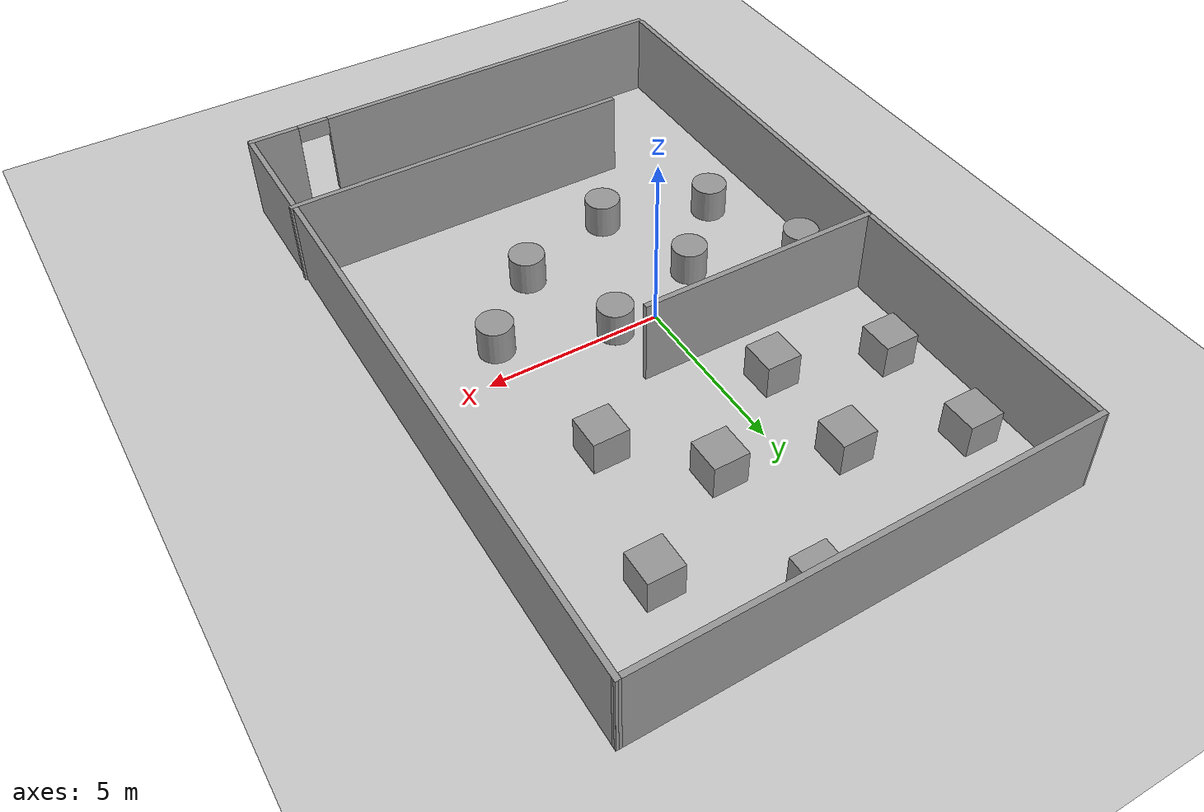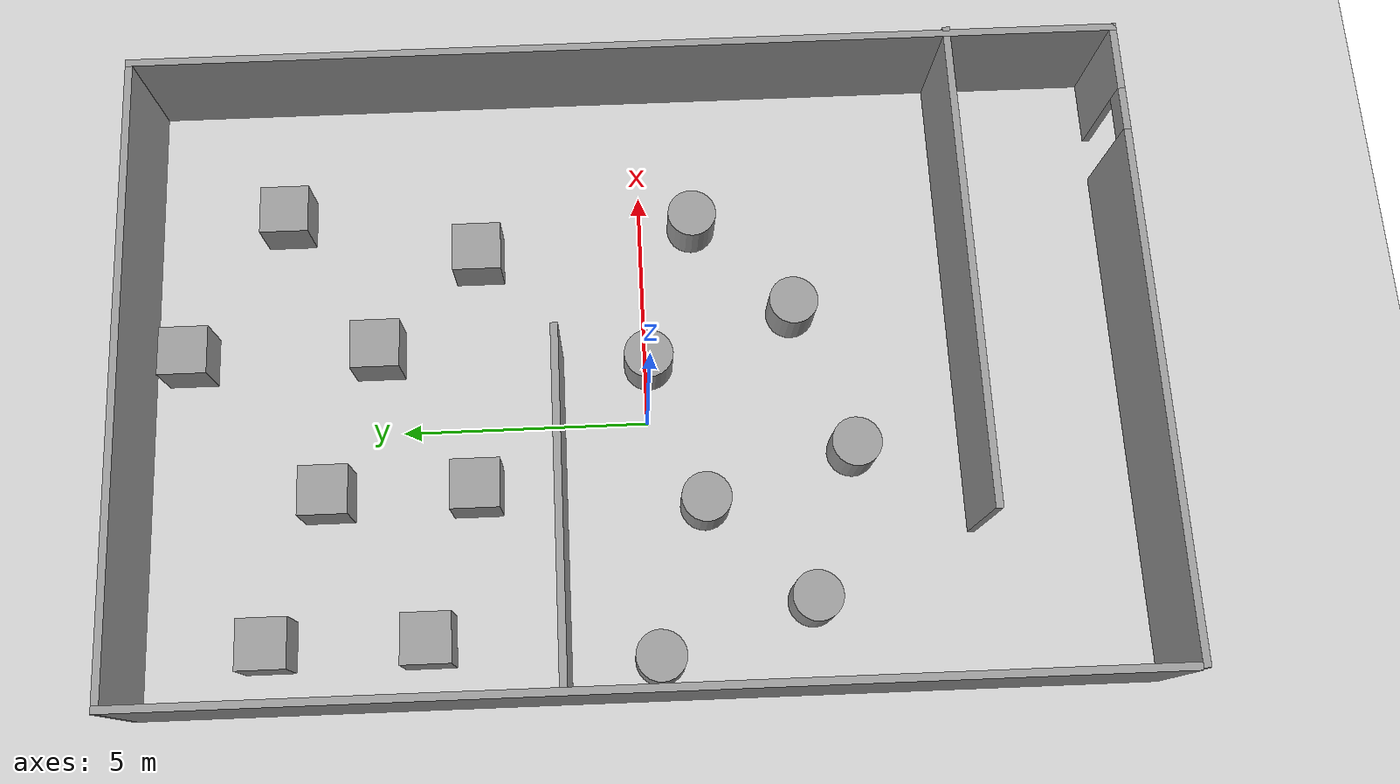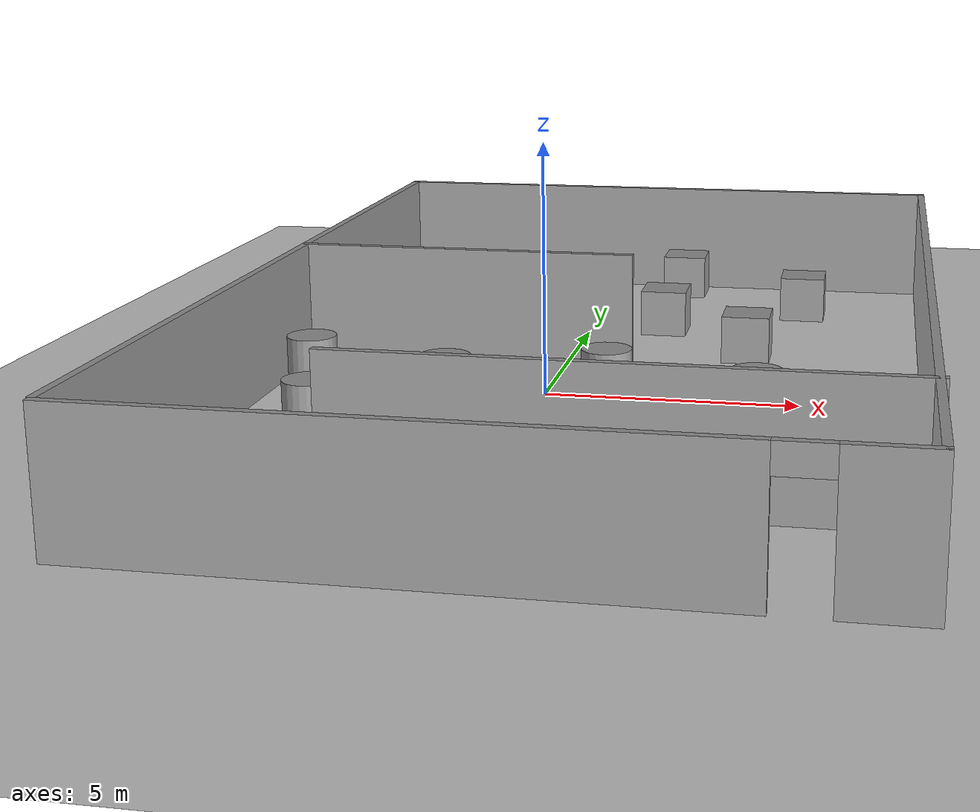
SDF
<sdf version="1.7">
 <world name="default">
  <light name="sun" type="directional">
   <pose>0 0 10 0 -0 0</pose>
   <diffuse>0.8 0.8 0.8 1</diffuse>
   <specular>0.2 0.2 0.2 1</specular>
   <attenuation>
    <range>1000</range>
    <constant>0.9</constant>
    <linear>0.01</linear>
    <quadratic>0.001</quadratic>
   </attenuation>
   <direction>-0.5 0.1 -0.9</direction>
   <spot><inner_angle>0</inner_angle><outer_angle>0</outer_angle><falloff>0</falloff></spot>
  </light>
  <model name="ground_plane">
   <static>1</static>
   <link name="link">
    <collision name="collision">
     <geometry><plane><normal>0 0 1</normal><size>100 100</size></plane></geometry>
     <surface><friction><ode><mu>100</mu><mu2>50</mu2></ode></friction></surface>
    </collision>
    <visual name="visual">
     <cast_shadows>0</cast_shadows>
     <geometry><plane><normal>0 0 1</normal><size>100 100</size></plane></geometry>
     <material>
      <script><uri>file://media/materials/scripts/gazebo.material</uri><name>Gazebo/Grey</name></script>
     </material>
    </visual>
   </link>
  </model>
  <gravity>0 0 -9.8</gravity>
  <magnetic_field>6e-06 2.3e-05 -4.2e-05</magnetic_field>
  <atmosphere type="adiabatic"/>
  <physics type="ode">
   <max_step_size>0.001</max_step_size>
   <real_time_factor>1</real_time_factor>
   <real_time_update_rate>1000</real_time_update_rate>
  </physics>
  <scene><ambient>0.4 0.4 0.4 1</ambient><background>0.7 0.7 0.7 1</background><shadows>1</shadows></scene>
  <spherical_coordinates>
   <surface_model>EARTH_WGS84</surface_model>
   <latitude_deg>0</latitude_deg>
   <longitude_deg>0</longitude_deg>
   <elevation>0</elevation>
   <heading_deg>0</heading_deg>
  </spherical_coordinates>
  <model name="hd_world">
   <model name="hd_world">
    <pose>0.372703 2.13157 0 0 -0 0</pose>
    <link name="Wall_0">
     <pose>-0.009132 -10.0503 0 0 -0 3.14159</pose>
     <visual name="Wall_0_Visual_0">
      <pose>-5.76706 0 1.25 0 -0 0</pose>
      <geometry><box><size>1.46587 0.15 2.5</size></box></geometry>
      <material>
       <script><uri>file://media/materials/scripts/gazebo.material</uri><name>Gazebo/Grey</name></script>
       <ambient>1 1 1 1</ambient>
      </material>
      <meta><layer>0</layer></meta>
     </visual>
     <collision name="Wall_0_Collision_0">
      <geometry><box><size>1.46587 0.15 2.5</size></box></geometry>
      <pose>-5.76706 0 1.25 0 -0 0</pose>
     </collision>
     <visual name="Wall_0_Visual_1">
      <pose>1.18294 0 1.25 0 -0 0</pose>
      <geometry><box><size>10.6341 0.15 2.5</size></box></geometry>
      <material>
       <script><uri>file://media/materials/scripts/gazebo.material</uri><name>Gazebo/Grey</name></script>
       <ambient>1 1 1 1</ambient>
      </material>
      <meta><layer>0</layer></meta>
     </visual>
     <collision name="Wall_0_Collision_1">
      <geometry><box><size>10.6341 0.15 2.5</size></box></geometry>
      <pose>1.18294 0 1.25 0 -0 0</pose>
     </collision>
     <visual name="Wall_0_Visual_2">
      <pose>-4.58413 0 2.25 0 -0 0</pose>
      <geometry><box><size>0.9 0.15 0.5</size></box></geometry>
      <material>
       <script><uri>file://media/materials/scripts/gazebo.material</uri><name>Gazebo/Grey</name></script>
       <ambient>1 1 1 1</ambient>
      </material>
      <meta><layer>0</layer></meta>
     </visual>
     <collision name="Wall_0_Collision_2">
      <geometry><box><size>0.9 0.15 0.5</size></box></geometry>
      <pose>-4.58413 0 2.25 0 -0 0</pose>
     </collision>
    </link>
    <link name="Wall_10">
     <collision name="Wall_10_Collision">
      <geometry><box><size>7 0.15 2.5</size></box></geometry>
      <pose>0 0 1.25 0 -0 0</pose>
     </collision>
     <visual name="Wall_10_Visual">
      <pose>0 0 1.25 0 -0 0</pose>
      <geometry><box><size>7 0.15 2.5</size></box></geometry>
      <material>
       <script><uri>file://media/materials/scripts/gazebo.material</uri><name>Gazebo/Grey</name></script>
       <ambient>1 1 1 1</ambient>
      </material>
      <meta><layer>0</layer></meta>
     </visual>
     <pose>-2.98607 1.55558 0 0 -0 0</pose>
    </link>
    <link name="Wall_2">
     <collision name="Wall_2_Collision">
      <geometry><box><size>20.25 0.15 2.5</size></box></geometry>
      <pose>0 0 1.25 0 -0 0</pose>
     </collision>
     <visual name="Wall_2_Visual">
      <pose>0 0 1.25 0 -0 0</pose>
      <geometry><box><size>20.25 0.15 2.5</size></box></geometry>
      <material>
       <script><uri>file://media/materials/scripts/gazebo.material</uri><name>Gazebo/Grey</name></script>
       <ambient>1 1 1 1</ambient>
      </material>
      <meta><layer>0</layer></meta>
     </visual>
     <pose>6.41587 -0.000303 0 0 -0 1.5708</pose>
    </link>
    <link name="Wall_4">
     <collision name="Wall_4_Collision">
      <geometry><box><size>13 0.15 2.5</size></box></geometry>
      <pose>0 0 1.25 0 -0 0</pose>
     </collision>
     <visual name="Wall_4_Visual">
      <pose>0 0 1.25 0 -0 0</pose>
      <geometry><box><size>13 0.15 2.5</size></box></geometry>
      <material>
       <script><uri>file://media/materials/scripts/gazebo.material</uri><name>Gazebo/Grey</name></script>
       <ambient>1 1 1 1</ambient>
      </material>
      <meta><layer>0</layer></meta>
     </visual>
     <pose>-0.00892 9.99756 0 0 -0 -3.13348</pose>
    </link>
    <link name="Wall_6">
     <collision name="Wall_6_Collision">
      <geometry><box><size>20 0.15 2.5</size></box></geometry>
      <pose>0 0 1.25 0 -0 0</pose>
     </collision>
     <visual name="Wall_6_Visual">
      <pose>0 0 1.25 0 -0 0</pose>
      <geometry><box><size>20 0.15 2.5</size></box></geometry>
      <material>
       <script><uri>file://media/materials/scripts/gazebo.material</uri><name>Gazebo/Grey</name></script>
       <ambient>1 1 1 1</ambient>
      </material>
      <meta><layer>0</layer></meta>
     </visual>
     <pose>-6.45439 0.020257 0 0 -0 -1.57288</pose>
    </link>
    <link name="Wall_8">
     <collision name="Wall_8_Collision">
      <geometry><box><size>10 0.15 2.5</size></box></geometry>
      <pose>0 0 1.25 0 -0 0</pose>
     </collision>
     <visual name="Wall_8_Visual">
      <pose>0 0 1.25 0 -0 0</pose>
      <geometry><box><size>10 0.15 2.5</size></box></geometry>
      <material>
       <script><uri>file://media/materials/scripts/gazebo.material</uri><name>Gazebo/Grey</name></script>
       <ambient>1 1 1 1</ambient>
      </material>
      <meta><layer>0</layer></meta>
     </visual>
     <pose>1.55022 -6.63711 0 0 -0 3.14159</pose>
    </link>
    <static>1</static>
   </model>
   <model name="hd_world_0">
    <link name="link_0">
     <inertial>
      <mass>1</mass>
      <inertia><ixx>0.145833</ixx><ixy>0</ixy><ixz>0</ixz><iyy>0.145833</iyy><iyz>0</iyz><izz>0.125</izz></inertia>
     </inertial>
     <pose>-4.99904 3.99541 0.5 0 -0 0</pose>
     <visual name="visual">
      <geometry><cylinder><radius>0.5</radius><length>1</length></cylinder></geometry>
      <material>
       <lighting>1</lighting>
       <script><uri>file://media/materials/scripts/gazebo.material</uri><name>Gazebo/Grey</name></script>
       <shader type="pixel"/>
      </material>
     </visual>
     <collision name="collision">
      <geometry><cylinder><radius>0.5</radius><length>1</length></cylinder></geometry>
      <surface>
       <friction>
        <ode><mu>1</mu><mu2>1</mu2><fdir1>0 0 0</fdir1><slip1>0</slip1><slip2>0</slip2></ode>
        <torsional>
         <coefficient>1</coefficient>
         <patch_radius>0</patch_radius>
         <surface_radius>0</surface_radius>
         <use_patch_radius>1</use_patch_radius>
         <ode><slip>0</slip></ode>
        </torsional>
       </friction>
       <bounce><restitution_coefficient>0</restitution_coefficient><threshold>1e+06</threshold></bounce>
       <contact>
        <collide_without_contact>0</collide_without_contact>
        <collide_without_contact_bitmask>1</collide_without_contact_bitmask>
        <collide_bitmask>1</collide_bitmask>
        <ode>
         <soft_cfm>0</soft_cfm>
         <soft_erp>0.2</soft_erp>
         <kp>1e+13</kp>
         <kd>1</kd>
         <max_vel>0.01</max_vel>
         <min_depth>0</min_depth>
        </ode>
        <bullet>
         <split_impulse>1</split_impulse>
         <split_impulse_penetration_threshold>-0.01</split_impulse_penetration_threshold>
         <soft_cfm>0</soft_cfm>
         <soft_erp>0.2</soft_erp>
         <kp>1e+13</kp>
         <kd>1</kd>
        </bullet>
       </contact>
      </surface>
     </collision>
    </link>
    <link name="link_1">
     <inertial>
      <mass>1</mass>
      <inertia><ixx>0.145833</ixx><ixy>0</ixy><ixz>0</ixz><iyy>0.145833</iyy><iyz>0</iyz><izz>0.125</izz></inertia>
     </inertial>
     <pose>-1.95821 2.96596 0.5 0 -0 0</pose>
     <visual name="visual">
      <geometry><cylinder><radius>0.5</radius><length>1</length></cylinder></geometry>
      <material>
       <lighting>1</lighting>
       <script><uri>file://media/materials/scripts/gazebo.material</uri><name>Gazebo/Grey</name></script>
       <shader type="pixel"/>
      </material>
     </visual>
     <collision name="collision">
      <geometry><cylinder><radius>0.5</radius><length>1</length></cylinder></geometry>
      <surface>
       <friction>
        <ode><mu>1</mu><mu2>1</mu2><fdir1>0 0 0</fdir1><slip1>0</slip1><slip2>0</slip2></ode>
        <torsional>
         <coefficient>1</coefficient>
         <patch_radius>0</patch_radius>
         <surface_radius>0</surface_radius>
         <use_patch_radius>1</use_patch_radius>
         <ode><slip>0</slip></ode>
        </torsional>
       </friction>
       <bounce><restitution_coefficient>0</restitution_coefficient><threshold>1e+06</threshold></bounce>
       <contact>
        <collide_without_contact>0</collide_without_contact>
        <collide_without_contact_bitmask>1</collide_without_contact_bitmask>
        <collide_bitmask>1</collide_bitmask>
        <ode>
         <soft_cfm>0</soft_cfm>
         <soft_erp>0.2</soft_erp>
         <kp>1e+13</kp>
         <kd>1</kd>
         <max_vel>0.01</max_vel>
         <min_depth>0</min_depth>
        </ode>
        <bullet>
         <split_impulse>1</split_impulse>
         <split_impulse_penetration_threshold>-0.01</split_impulse_penetration_threshold>
         <soft_cfm>0</soft_cfm>
         <soft_erp>0.2</soft_erp>
         <kp>1e+13</kp>
         <kd>1</kd>
        </bullet>
       </contact>
      </surface>
     </collision>
    </link>
    <link name="link_10">
     <inertial>
      <mass>1</mass>
      <inertia>
       <ixx>0.166667</ixx>
       <ixy>0</ixy>
       <ixz>0</ixz>
       <iyy>0.166667</iyy>
       <iyz>0</iyz>
       <izz>0.166667</izz>
      </inertia>
     </inertial>
     <pose>3.48617 7.44236 0.5 0 -0 0</pose>
     <visual name="visual">
      <geometry><box><size>1 1 1</size></box></geometry>
      <material>
       <lighting>1</lighting>
       <script><uri>file://media/materials/scripts/gazebo.material</uri><name>Gazebo/Grey</name></script>
       <shader type="pixel"/>
      </material>
     </visual>
     <collision name="collision">
      <geometry><box><size>1 1 1</size></box></geometry>
      <surface>
       <friction>
        <ode><mu>1</mu><mu2>1</mu2><fdir1>0 0 0</fdir1><slip1>0</slip1><slip2>0</slip2></ode>
        <torsional>
         <coefficient>1</coefficient>
         <patch_radius>0</patch_radius>
         <surface_radius>0</surface_radius>
         <use_patch_radius>1</use_patch_radius>
         <ode><slip>0</slip></ode>
        </torsional>
       </friction>
       <bounce><restitution_coefficient>0</restitution_coefficient><threshold>1e+06</threshold></bounce>
       <contact>
        <collide_without_contact>0</collide_without_contact>
        <collide_without_contact_bitmask>1</collide_without_contact_bitmask>
        <collide_bitmask>1</collide_bitmask>
        <ode>
         <soft_cfm>0</soft_cfm>
         <soft_erp>0.2</soft_erp>
         <kp>1e+13</kp>
         <kd>1</kd>
         <max_vel>0.01</max_vel>
         <min_depth>0</min_depth>
        </ode>
        <bullet>
         <split_impulse>1</split_impulse>
         <split_impulse_penetration_threshold>-0.01</split_impulse_penetration_threshold>
         <soft_cfm>0</soft_cfm>
         <soft_erp>0.2</soft_erp>
         <kp>1e+13</kp>
         <kd>1</kd>
        </bullet>
       </contact>
      </surface>
     </collision>
    </link>
    <link name="link_11">
     <inertial>
      <mass>1</mass>
      <inertia><ixx>0.145833</ixx><ixy>0</ixy><ixz>0</ixz><iyy>0.145833</iyy><iyz>0</iyz><izz>0.125</izz></inertia>
     </inertial>
     <pose>-0.96921 -0.078313 0.5 0 -0 0</pose>
     <visual name="visual">
      <geometry><cylinder><radius>0.5</radius><length>1</length></cylinder></geometry>
      <material>
       <lighting>1</lighting>
       <script><uri>file://media/materials/scripts/gazebo.material</uri><name>Gazebo/Grey</name></script>
       <shader type="pixel"/>
      </material>
     </visual>
     <collision name="collision">
      <geometry><cylinder><radius>0.5</radius><length>1</length></cylinder></geometry>
      <surface>
       <friction>
        <ode><mu>1</mu><mu2>1</mu2><fdir1>0 0 0</fdir1><slip1>0</slip1><slip2>0</slip2></ode>
        <torsional>
         <coefficient>1</coefficient>
         <patch_radius>0</patch_radius>
         <surface_radius>0</surface_radius>
         <use_patch_radius>1</use_patch_radius>
         <ode><slip>0</slip></ode>
        </torsional>
       </friction>
       <bounce><restitution_coefficient>0</restitution_coefficient><threshold>1e+06</threshold></bounce>
       <contact>
        <collide_without_contact>0</collide_without_contact>
        <collide_without_contact_bitmask>1</collide_without_contact_bitmask>
        <collide_bitmask>1</collide_bitmask>
        <ode>
         <soft_cfm>0</soft_cfm>
         <soft_erp>0.2</soft_erp>
         <kp>1e+13</kp>
         <kd>1</kd>
         <max_vel>0.01</max_vel>
         <min_depth>0</min_depth>
        </ode>
        <bullet>
         <split_impulse>1</split_impulse>
         <split_impulse_penetration_threshold>-0.01</split_impulse_penetration_threshold>
         <soft_cfm>0</soft_cfm>
         <soft_erp>0.2</soft_erp>
         <kp>1e+13</kp>
         <kd>1</kd>
        </bullet>
       </contact>
      </surface>
     </collision>
    </link>
    <link name="link_12">
     <inertial>
      <mass>1</mass>
      <inertia><ixx>0.145833</ixx><ixy>0</ixy><ixz>0</ixz><iyy>0.145833</iyy><iyz>0</iyz><izz>0.125</izz></inertia>
     </inertial>
     <pose>2.04367 0.971009 0.5 0 -0 0</pose>
     <visual name="visual">
      <geometry><cylinder><radius>0.5</radius><length>1</length></cylinder></geometry>
      <material>
       <lighting>1</lighting>
       <script><uri>file://media/materials/scripts/gazebo.material</uri><name>Gazebo/Grey</name></script>
       <shader type="pixel"/>
      </material>
     </visual>
     <collision name="collision">
      <geometry><cylinder><radius>0.5</radius><length>1</length></cylinder></geometry>
      <surface>
       <friction>
        <ode><mu>1</mu><mu2>1</mu2><fdir1>0 0 0</fdir1><slip1>0</slip1><slip2>0</slip2></ode>
        <torsional>
         <coefficient>1</coefficient>
         <patch_radius>0</patch_radius>
         <surface_radius>0</surface_radius>
         <use_patch_radius>1</use_patch_radius>
         <ode><slip>0</slip></ode>
        </torsional>
       </friction>
       <bounce><restitution_coefficient>0</restitution_coefficient><threshold>1e+06</threshold></bounce>
       <contact>
        <collide_without_contact>0</collide_without_contact>
        <collide_without_contact_bitmask>1</collide_without_contact_bitmask>
        <collide_bitmask>1</collide_bitmask>
        <ode>
         <soft_cfm>0</soft_cfm>
         <soft_erp>0.2</soft_erp>
         <kp>1e+13</kp>
         <kd>1</kd>
         <max_vel>0.01</max_vel>
         <min_depth>0</min_depth>
        </ode>
        <bullet>
         <split_impulse>1</split_impulse>
         <split_impulse_penetration_threshold>-0.01</split_impulse_penetration_threshold>
         <soft_cfm>0</soft_cfm>
         <soft_erp>0.2</soft_erp>
         <kp>1e+13</kp>
         <kd>1</kd>
        </bullet>
       </contact>
      </surface>
     </collision>
    </link>
    <link name="link_13">
     <inertial>
      <mass>1</mass>
      <inertia><ixx>0.145833</ixx><ixy>0</ixy><ixz>0</ixz><iyy>0.145833</iyy><iyz>0</iyz><izz>0.125</izz></inertia>
     </inertial>
     <pose>1.02492 3.98439 0.5 0 -0 0</pose>
     <visual name="visual">
      <geometry><cylinder><radius>0.5</radius><length>1</length></cylinder></geometry>
      <material>
       <lighting>1</lighting>
       <script><uri>file://media/materials/scripts/gazebo.material</uri><name>Gazebo/Grey</name></script>
       <shader type="pixel"/>
      </material>
     </visual>
     <collision name="collision">
      <geometry><cylinder><radius>0.5</radius><length>1</length></cylinder></geometry>
      <surface>
       <friction>
        <ode><mu>1</mu><mu2>1</mu2><fdir1>0 0 0</fdir1><slip1>0</slip1><slip2>0</slip2></ode>
        <torsional>
         <coefficient>1</coefficient>
         <patch_radius>0</patch_radius>
         <surface_radius>0</surface_radius>
         <use_patch_radius>1</use_patch_radius>
         <ode><slip>0</slip></ode>
        </torsional>
       </friction>
       <bounce><restitution_coefficient>0</restitution_coefficient><threshold>1e+06</threshold></bounce>
       <contact>
        <collide_without_contact>0</collide_without_contact>
        <collide_without_contact_bitmask>1</collide_without_contact_bitmask>
        <collide_bitmask>1</collide_bitmask>
        <ode>
         <soft_cfm>0</soft_cfm>
         <soft_erp>0.2</soft_erp>
         <kp>1e+13</kp>
         <kd>1</kd>
         <max_vel>0.01</max_vel>
         <min_depth>0</min_depth>
        </ode>
        <bullet>
         <split_impulse>1</split_impulse>
         <split_impulse_penetration_threshold>-0.01</split_impulse_penetration_threshold>
         <soft_cfm>0</soft_cfm>
         <soft_erp>0.2</soft_erp>
         <kp>1e+13</kp>
         <kd>1</kd>
        </bullet>
       </contact>
      </surface>
     </collision>
    </link>
    <link name="link_14">
     <inertial>
      <mass>1</mass>
      <inertia><ixx>0.145833</ixx><ixy>0</ixy><ixz>0</ixz><iyy>0.145833</iyy><iyz>0</iyz><izz>0.125</izz></inertia>
     </inertial>
     <pose>4.03532 2.95456 0.5 0 -0 0</pose>
     <visual name="visual">
      <geometry><cylinder><radius>0.5</radius><length>1</length></cylinder></geometry>
      <material>
       <lighting>1</lighting>
       <script><uri>file://media/materials/scripts/gazebo.material</uri><name>Gazebo/Grey</name></script>
       <shader type="pixel"/>
      </material>
     </visual>
     <collision name="collision">
      <geometry><cylinder><radius>0.5</radius><length>1</length></cylinder></geometry>
      <surface>
       <friction>
        <ode><mu>1</mu><mu2>1</mu2><fdir1>0 0 0</fdir1><slip1>0</slip1><slip2>0</slip2></ode>
        <torsional>
         <coefficient>1</coefficient>
         <patch_radius>0</patch_radius>
         <surface_radius>0</surface_radius>
         <use_patch_radius>1</use_patch_radius>
         <ode><slip>0</slip></ode>
        </torsional>
       </friction>
       <bounce><restitution_coefficient>0</restitution_coefficient><threshold>1e+06</threshold></bounce>
       <contact>
        <collide_without_contact>0</collide_without_contact>
        <collide_without_contact_bitmask>1</collide_without_contact_bitmask>
        <collide_bitmask>1</collide_bitmask>
        <ode>
         <soft_cfm>0</soft_cfm>
         <soft_erp>0.2</soft_erp>
         <kp>1e+13</kp>
         <kd>1</kd>
         <max_vel>0.01</max_vel>
         <min_depth>0</min_depth>
        </ode>
        <bullet>
         <split_impulse>1</split_impulse>
         <split_impulse_penetration_threshold>-0.01</split_impulse_penetration_threshold>
         <soft_cfm>0</soft_cfm>
         <soft_erp>0.2</soft_erp>
         <kp>1e+13</kp>
         <kd>1</kd>
        </bullet>
       </contact>
      </surface>
     </collision>
    </link>
    <link name="link_2">
     <inertial>
      <mass>1</mass>
      <inertia><ixx>0.145833</ixx><ixy>0</ixy><ixz>0</ixz><iyy>0.145833</iyy><iyz>0</iyz><izz>0.125</izz></inertia>
     </inertial>
     <pose>-3.97897 0.921046 0.5 0 -0 0</pose>
     <visual name="visual">
      <geometry><cylinder><radius>0.5</radius><length>1</length></cylinder></geometry>
      <material>
       <lighting>1</lighting>
       <script><uri>file://media/materials/scripts/gazebo.material</uri><name>Gazebo/Grey</name></script>
       <shader type="pixel"/>
      </material>
     </visual>
     <collision name="collision">
      <geometry><cylinder><radius>0.5</radius><length>1</length></cylinder></geometry>
      <surface>
       <friction>
        <ode><mu>1</mu><mu2>1</mu2><fdir1>0 0 0</fdir1><slip1>0</slip1><slip2>0</slip2></ode>
        <torsional>
         <coefficient>1</coefficient>
         <patch_radius>0</patch_radius>
         <surface_radius>0</surface_radius>
         <use_patch_radius>1</use_patch_radius>
         <ode><slip>0</slip></ode>
        </torsional>
       </friction>
       <bounce><restitution_coefficient>0</restitution_coefficient><threshold>1e+06</threshold></bounce>
       <contact>
        <collide_without_contact>0</collide_without_contact>
        <collide_without_contact_bitmask>1</collide_without_contact_bitmask>
        <collide_bitmask>1</collide_bitmask>
        <ode>
         <soft_cfm>0</soft_cfm>
         <soft_erp>0.2</soft_erp>
         <kp>1e+13</kp>
         <kd>1</kd>
         <max_vel>0.01</max_vel>
         <min_depth>0</min_depth>
        </ode>
        <bullet>
         <split_impulse>1</split_impulse>
         <split_impulse_penetration_threshold>-0.01</split_impulse_penetration_threshold>
         <soft_cfm>0</soft_cfm>
         <soft_erp>0.2</soft_erp>
         <kp>1e+13</kp>
         <kd>1</kd>
        </bullet>
       </contact>
      </surface>
     </collision>
    </link>
    <link name="link_3">
     <inertial>
      <mass>1</mass>
      <inertia>
       <ixx>0.166667</ixx>
       <ixy>0</ixy>
       <ixz>0</ixz>
       <iyy>0.166667</iyy>
       <iyz>0</iyz>
       <izz>0.166667</izz>
      </inertia>
     </inertial>
     <pose>-4.479 8.49804 0.5 0 -0 0</pose>
     <visual name="visual">
      <geometry><box><size>1 1 1</size></box></geometry>
      <material>
       <lighting>1</lighting>
       <script><uri>file://media/materials/scripts/gazebo.material</uri><name>Gazebo/Grey</name></script>
       <shader type="pixel"/>
      </material>
     </visual>
     <collision name="collision">
      <geometry><box><size>1 1 1</size></box></geometry>
      <surface>
       <friction>
        <ode><mu>1</mu><mu2>1</mu2><fdir1>0 0 0</fdir1><slip1>0</slip1><slip2>0</slip2></ode>
        <torsional>
         <coefficient>1</coefficient>
         <patch_radius>0</patch_radius>
         <surface_radius>0</surface_radius>
         <use_patch_radius>1</use_patch_radius>
         <ode><slip>0</slip></ode>
        </torsional>
       </friction>
       <bounce><restitution_coefficient>0</restitution_coefficient><threshold>1e+06</threshold></bounce>
       <contact>
        <collide_without_contact>0</collide_without_contact>
        <collide_without_contact_bitmask>1</collide_without_contact_bitmask>
        <collide_bitmask>1</collide_bitmask>
        <ode>
         <soft_cfm>0</soft_cfm>
         <soft_erp>0.2</soft_erp>
         <kp>1e+13</kp>
         <kd>1</kd>
         <max_vel>0.01</max_vel>
         <min_depth>0</min_depth>
        </ode>
        <bullet>
         <split_impulse>1</split_impulse>
         <split_impulse_penetration_threshold>-0.01</split_impulse_penetration_threshold>
         <soft_cfm>0</soft_cfm>
         <soft_erp>0.2</soft_erp>
         <kp>1e+13</kp>
         <kd>1</kd>
        </bullet>
       </contact>
      </surface>
     </collision>
    </link>
    <link name="link_4">
     <inertial>
      <mass>1</mass>
      <inertia>
       <ixx>0.166667</ixx>
       <ixy>0</ixy>
       <ixz>0</ixz>
       <iyy>0.166667</iyy>
       <iyz>0</iyz>
       <izz>0.166667</izz>
      </inertia>
     </inertial>
     <pose>-4.46043 11.6487 0.5 0 -0 0</pose>
     <visual name="visual">
      <geometry><box><size>1 1 1</size></box></geometry>
      <material>
       <lighting>1</lighting>
       <script><uri>file://media/materials/scripts/gazebo.material</uri><name>Gazebo/Grey</name></script>
       <shader type="pixel"/>
      </material>
     </visual>
     <collision name="collision">
      <geometry><box><size>1 1 1</size></box></geometry>
      <surface>
       <friction>
        <ode><mu>1</mu><mu2>1</mu2><fdir1>0 0 0</fdir1><slip1>0</slip1><slip2>0</slip2></ode>
        <torsional>
         <coefficient>1</coefficient>
         <patch_radius>0</patch_radius>
         <surface_radius>0</surface_radius>
         <use_patch_radius>1</use_patch_radius>
         <ode><slip>0</slip></ode>
        </torsional>
       </friction>
       <bounce><restitution_coefficient>0</restitution_coefficient><threshold>1e+06</threshold></bounce>
       <contact>
        <collide_without_contact>0</collide_without_contact>
        <collide_without_contact_bitmask>1</collide_without_contact_bitmask>
        <collide_bitmask>1</collide_bitmask>
        <ode>
         <soft_cfm>0</soft_cfm>
         <soft_erp>0.2</soft_erp>
         <kp>1e+13</kp>
         <kd>1</kd>
         <max_vel>0.01</max_vel>
         <min_depth>0</min_depth>
        </ode>
        <bullet>
         <split_impulse>1</split_impulse>
         <split_impulse_penetration_threshold>-0.01</split_impulse_penetration_threshold>
         <soft_cfm>0</soft_cfm>
         <soft_erp>0.2</soft_erp>
         <kp>1e+13</kp>
         <kd>1</kd>
        </bullet>
       </contact>
      </surface>
     </collision>
    </link>
    <link name="link_5">
     <inertial>
      <mass>1</mass>
      <inertia>
       <ixx>0.166667</ixx>
       <ixy>0</ixy>
       <ixz>0</ixz>
       <iyy>0.166667</iyy>
       <iyz>0</iyz>
       <izz>0.166667</izz>
      </inertia>
     </inertial>
     <pose>-1.50936 10.526 0.5 0 -0 0</pose>
     <visual name="visual">
      <geometry><box><size>1 1 1</size></box></geometry>
      <material>
       <lighting>1</lighting>
       <script><uri>file://media/materials/scripts/gazebo.material</uri><name>Gazebo/Grey</name></script>
       <shader type="pixel"/>
      </material>
     </visual>
     <collision name="collision">
      <geometry><box><size>1 1 1</size></box></geometry>
      <surface>
       <friction>
        <ode><mu>1</mu><mu2>1</mu2><fdir1>0 0 0</fdir1><slip1>0</slip1><slip2>0</slip2></ode>
        <torsional>
         <coefficient>1</coefficient>
         <patch_radius>0</patch_radius>
         <surface_radius>0</surface_radius>
         <use_patch_radius>1</use_patch_radius>
         <ode><slip>0</slip></ode>
        </torsional>
       </friction>
       <bounce><restitution_coefficient>0</restitution_coefficient><threshold>1e+06</threshold></bounce>
       <contact>
        <collide_without_contact>0</collide_without_contact>
        <collide_without_contact_bitmask>1</collide_without_contact_bitmask>
        <collide_bitmask>1</collide_bitmask>
        <ode>
         <soft_cfm>0</soft_cfm>
         <soft_erp>0.2</soft_erp>
         <kp>1e+13</kp>
         <kd>1</kd>
         <max_vel>0.01</max_vel>
         <min_depth>0</min_depth>
        </ode>
        <bullet>
         <split_impulse>1</split_impulse>
         <split_impulse_penetration_threshold>-0.01</split_impulse_penetration_threshold>
         <soft_cfm>0</soft_cfm>
         <soft_erp>0.2</soft_erp>
         <kp>1e+13</kp>
         <kd>1</kd>
        </bullet>
       </contact>
      </surface>
     </collision>
    </link>
    <link name="link_6">
     <inertial>
      <mass>1</mass>
      <inertia>
       <ixx>0.166667</ixx>
       <ixy>0</ixy>
       <ixz>0</ixz>
       <iyy>0.166667</iyy>
       <iyz>0</iyz>
       <izz>0.166667</izz>
      </inertia>
     </inertial>
     <pose>-1.49954 7.52863 0.5 0 -0 0</pose>
     <visual name="visual">
      <geometry><box><size>1 1 1</size></box></geometry>
      <material>
       <lighting>1</lighting>
       <script><uri>file://media/materials/scripts/gazebo.material</uri><name>Gazebo/Grey</name></script>
       <shader type="pixel"/>
      </material>
     </visual>
     <collision name="collision">
      <geometry><box><size>1 1 1</size></box></geometry>
      <surface>
       <friction>
        <ode><mu>1</mu><mu2>1</mu2><fdir1>0 0 0</fdir1><slip1>0</slip1><slip2>0</slip2></ode>
        <torsional>
         <coefficient>1</coefficient>
         <patch_radius>0</patch_radius>
         <surface_radius>0</surface_radius>
         <use_patch_radius>1</use_patch_radius>
         <ode><slip>0</slip></ode>
        </torsional>
       </friction>
       <bounce><restitution_coefficient>0</restitution_coefficient><threshold>1e+06</threshold></bounce>
       <contact>
        <collide_without_contact>0</collide_without_contact>
        <collide_without_contact_bitmask>1</collide_without_contact_bitmask>
        <collide_bitmask>1</collide_bitmask>
        <ode>
         <soft_cfm>0</soft_cfm>
         <soft_erp>0.2</soft_erp>
         <kp>1e+13</kp>
         <kd>1</kd>
         <max_vel>0.01</max_vel>
         <min_depth>0</min_depth>
        </ode>
        <bullet>
         <split_impulse>1</split_impulse>
         <split_impulse_penetration_threshold>-0.01</split_impulse_penetration_threshold>
         <soft_cfm>0</soft_cfm>
         <soft_erp>0.2</soft_erp>
         <kp>1e+13</kp>
         <kd>1</kd>
        </bullet>
       </contact>
      </surface>
     </collision>
    </link>
    <link name="link_7">
     <inertial>
      <mass>1</mass>
      <inertia>
       <ixx>0.166667</ixx>
       <ixy>0</ixy>
       <ixz>0</ixz>
       <iyy>0.166667</iyy>
       <iyz>0</iyz>
       <izz>0.166667</izz>
      </inertia>
     </inertial>
     <pose>1.47061 9.52597 0.5 0 -0 0</pose>
     <visual name="visual">
      <geometry><box><size>1 1 1</size></box></geometry>
      <material>
       <lighting>1</lighting>
       <script><uri>file://media/materials/scripts/gazebo.material</uri><name>Gazebo/Grey</name></script>
       <shader type="pixel"/>
      </material>
     </visual>
     <collision name="collision">
      <geometry><box><size>1 1 1</size></box></geometry>
      <surface>
       <friction>
        <ode><mu>1</mu><mu2>1</mu2><fdir1>0 0 0</fdir1><slip1>0</slip1><slip2>0</slip2></ode>
        <torsional>
         <coefficient>1</coefficient>
         <patch_radius>0</patch_radius>
         <surface_radius>0</surface_radius>
         <use_patch_radius>1</use_patch_radius>
         <ode><slip>0</slip></ode>
        </torsional>
       </friction>
       <bounce><restitution_coefficient>0</restitution_coefficient><threshold>1e+06</threshold></bounce>
       <contact>
        <collide_without_contact>0</collide_without_contact>
        <collide_without_contact_bitmask>1</collide_without_contact_bitmask>
        <collide_bitmask>1</collide_bitmask>
        <ode>
         <soft_cfm>0</soft_cfm>
         <soft_erp>0.2</soft_erp>
         <kp>1e+13</kp>
         <kd>1</kd>
         <max_vel>0.01</max_vel>
         <min_depth>0</min_depth>
        </ode>
        <bullet>
         <split_impulse>1</split_impulse>
         <split_impulse_penetration_threshold>-0.01</split_impulse_penetration_threshold>
         <soft_cfm>0</soft_cfm>
         <soft_erp>0.2</soft_erp>
         <kp>1e+13</kp>
         <kd>1</kd>
        </bullet>
       </contact>
      </surface>
     </collision>
    </link>
    <link name="link_8">
     <inertial>
      <mass>1</mass>
      <inertia>
       <ixx>0.166667</ixx>
       <ixy>0</ixy>
       <ixz>0</ixz>
       <iyy>0.166667</iyy>
       <iyz>0</iyz>
       <izz>0.166667</izz>
      </inertia>
     </inertial>
     <pose>1.47977 13.4108 0.5 0 -0 0</pose>
     <visual name="visual">
      <geometry><box><size>1 1 1</size></box></geometry>
      <material>
       <lighting>1</lighting>
       <script><uri>file://media/materials/scripts/gazebo.material</uri><name>Gazebo/Grey</name></script>
       <shader type="pixel"/>
      </material>
     </visual>
     <collision name="collision">
      <geometry><box><size>1 1 1</size></box></geometry>
      <surface>
       <friction>
        <ode><mu>1</mu><mu2>1</mu2><fdir1>0 0 0</fdir1><slip1>0</slip1><slip2>0</slip2></ode>
        <torsional>
         <coefficient>1</coefficient>
         <patch_radius>0</patch_radius>
         <surface_radius>0</surface_radius>
         <use_patch_radius>1</use_patch_radius>
         <ode><slip>0</slip></ode>
        </torsional>
       </friction>
       <bounce><restitution_coefficient>0</restitution_coefficient><threshold>1e+06</threshold></bounce>
       <contact>
        <collide_without_contact>0</collide_without_contact>
        <collide_without_contact_bitmask>1</collide_without_contact_bitmask>
        <collide_bitmask>1</collide_bitmask>
        <ode>
         <soft_cfm>0</soft_cfm>
         <soft_erp>0.2</soft_erp>
         <kp>1e+13</kp>
         <kd>1</kd>
         <max_vel>0.01</max_vel>
         <min_depth>0</min_depth>
        </ode>
        <bullet>
         <split_impulse>1</split_impulse>
         <split_impulse_penetration_threshold>-0.01</split_impulse_penetration_threshold>
         <soft_cfm>0</soft_cfm>
         <soft_erp>0.2</soft_erp>
         <kp>1e+13</kp>
         <kd>1</kd>
        </bullet>
       </contact>
      </surface>
     </collision>
    </link>
    <link name="link_9">
     <inertial>
      <mass>1</mass>
      <inertia>
       <ixx>0.166667</ixx>
       <ixy>0</ixy>
       <ixz>0</ixz>
       <iyy>0.166667</iyy>
       <iyz>0</iyz>
       <izz>0.166667</izz>
      </inertia>
     </inertial>
     <pose>4.47285 11.432 0.5 0 -0 0</pose>
     <visual name="visual">
      <geometry><box><size>1 1 1</size></box></geometry>
      <material>
       <lighting>1</lighting>
       <script><uri>file://media/materials/scripts/gazebo.material</uri><name>Gazebo/Grey</name></script>
       <shader type="pixel"/>
      </material>
     </visual>
     <collision name="collision">
      <geometry><box><size>1 1 1</size></box></geometry>
      <surface>
       <friction>
        <ode><mu>1</mu><mu2>1</mu2><fdir1>0 0 0</fdir1><slip1>0</slip1><slip2>0</slip2></ode>
        <torsional>
         <coefficient>1</coefficient>
         <patch_radius>0</patch_radius>
         <surface_radius>0</surface_radius>
         <use_patch_radius>1</use_patch_radius>
         <ode><slip>0</slip></ode>
        </torsional>
       </friction>
       <bounce><restitution_coefficient>0</restitution_coefficient><threshold>1e+06</threshold></bounce>
       <contact>
        <collide_without_contact>0</collide_without_contact>
        <collide_without_contact_bitmask>1</collide_without_contact_bitmask>
        <collide_bitmask>1</collide_bitmask>
        <ode>
         <soft_cfm>0</soft_cfm>
         <soft_erp>0.2</soft_erp>
         <kp>1e+13</kp>
         <kd>1</kd>
         <max_vel>0.01</max_vel>
         <min_depth>0</min_depth>
        </ode>
        <bullet>
         <split_impulse>1</split_impulse>
         <split_impulse_penetration_threshold>-0.01</split_impulse_penetration_threshold>
         <soft_cfm>0</soft_cfm>
         <soft_erp>0.2</soft_erp>
         <kp>1e+13</kp>
         <kd>1</kd>
        </bullet>
       </contact>
      </surface>
     </collision>
    </link>
    <static>0</static>
    <pose>-0.372703 -2.13158 0 0 -0 0</pose>
   </model>
   <static>0</static>
   <pose>0.58476 -1.90785 0 0 -0 0</pose>
  </model>
 </world>
</sdf>
